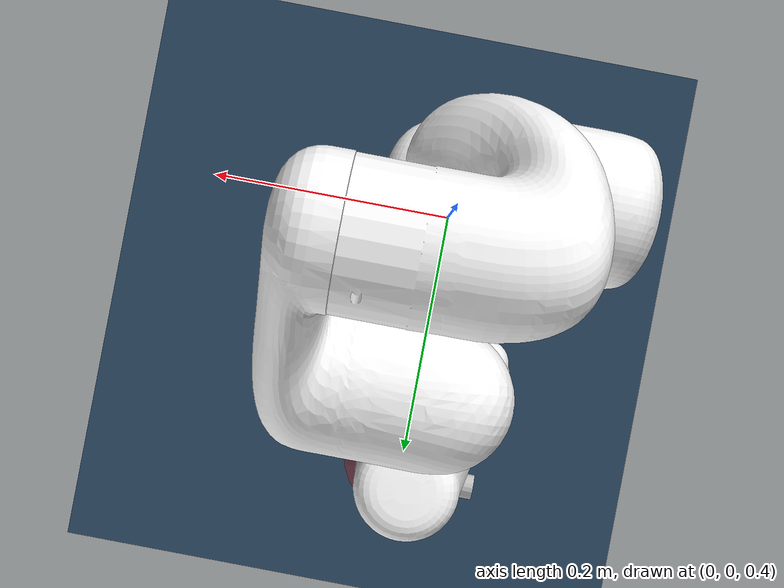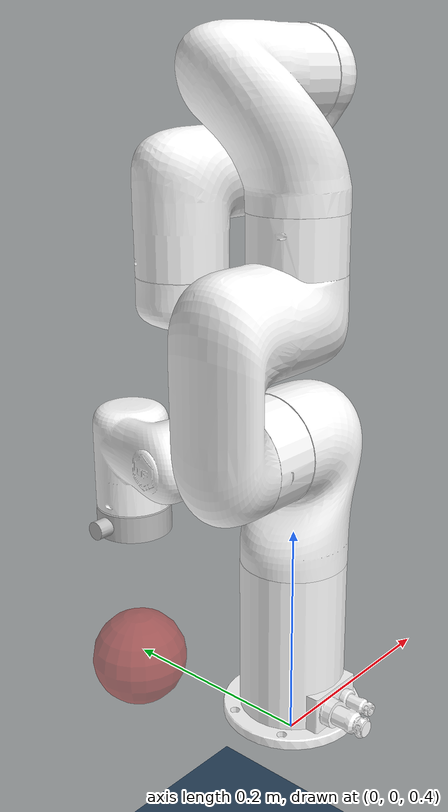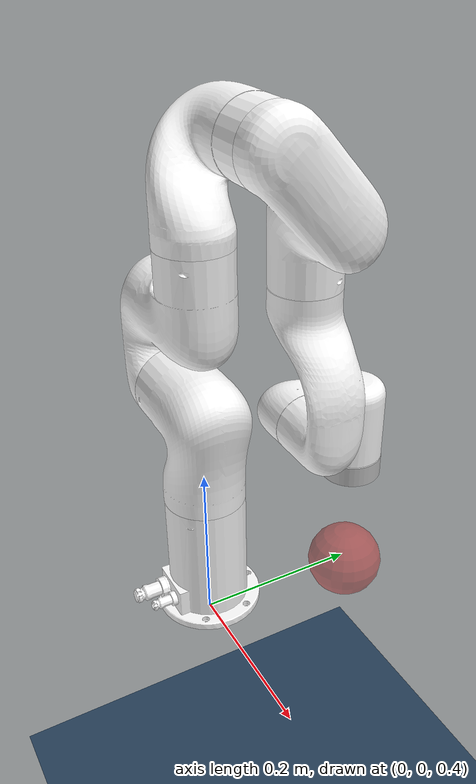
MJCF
<mujoco model="xarm7 scene">
  <!-- 加载不带夹爪的xArm7模型 -->
  <include file="xarm7_nohand.xml"/>

  <!-- 未知 -->
  <statistic center="0.2 0 0.4" extent=".65"/>

  <!-- 视觉效果定义 -->
  <visual>
    <headlight diffuse="0.6 0.6 0.6" ambient="0.3 0.3 0.3" specular="0 0 0"/>
    <rgba haze="0.15 0.25 0.35 1"/>
    <global azimuth="150" elevation="-20"/>
  </visual>

  <asset>
    <!-- 天空盒样式 -->
    <texture type="skybox" builtin="gradient" rgb1="0.3 0.5 0.7" rgb2="0 0 0" width="512" height="3072"/>

    <!-- 地板样式1 -->
    <texture type="2d" name="groundplane" builtin="checker" mark="edge" rgb1="0.2 0.3 0.4" rgb2="0.1 0.2 0.3" markrgb="0.8 0.8 0.8" width="300" height="300"/>
    <material name="groundplane" texture="groundplane" texuniform="true" texrepeat="5 5" reflectance="0.2"/>

    <!-- 地板样式2 -->
    <texture type="2d" name="grid" builtin="checker" rgb1=".1 .2 .3" rgb2=".2 .3 .4" width="300" height="300"/>
    <material name="grid" texture="grid" texrepeat="8 8" reflectance=".2"/>

    <!-- 多种颜色RGB定义 -->
    <material name="red" rgba="0.8 0.2 0.2 1"/>
    <material name="orange" rgba="0.8 0.5 0.2 1"/>
    <material name="yellow" rgba="0.8 0.8 0.2 1"/>
    <material name="green" rgba="0.2 0.8 0.2 1"/>
    <material name="blue" rgba="0.2 0.2 0.8 1"/>
    <material name="purple" rgba="0.6 0.2 0.8 1"/>
    <material name="black" rgba="0.149 0.149 0.149 1"/>
    <material name="plastic" rgba="0.9 0.9 0.9 1"/>
  </asset>

  <!-- 灯光及地板定义 -->
  <worldbody>
    <light pos="0 0 1.5" dir="0 0 -1" directional="true"/>
    <geom name="floor" size="0 0 0.05"  type="plane" material="groundplane"/>
  </worldbody>

  <!-- 相机定义 -->
  <worldbody>
    <body name="camera1" pos=" 0.5  0.0 1.2" euler="0.0 0.0 0.0">
      <camera name="cam1" fovy="60"/>
    </body>

    <body name="camera2" pos=" 0.0  0.5 1.2" euler="0.0 0.0 0.0">
      <camera name="cam2" fovy="60"/>
    </body>

    <body name="camera3" pos="-0.5  0.0 1.2" euler="0.0 0.0 0.0">
      <camera name="cam3" fovy="60"/>
    </body>

    <body name="camera4" pos=" 0.0 -0.5 1.2" euler="0.0 0.0 0.0">
      <camera name="cam4" fovy="60"/>
    </body>
  </worldbody>

</mujoco>

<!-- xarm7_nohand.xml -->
<mujoco model="xarm7 nohand">
  <compiler angle="radian" autolimits="true" meshdir="assets"/>

  <option integrator="implicitfast"/>

  <asset>
    <material name="white" rgba="1 1 1 1"/>
    <material name="gray" rgba="0.753 0.753 0.753 1"/>

    <mesh file="link_base.stl"/>
    <mesh file="link1.stl"/>
    <mesh file="link2.stl"/>
    <mesh file="link3.stl"/>
    <mesh file="link4.stl"/>
    <mesh file="link5.stl"/>
    <mesh file="link6.stl"/>
    <mesh file="link7.stl"/>
    <mesh file="end_tool.stl"/>
  </asset>

  <default>
    <default class="xarm7">
      <geom type="mesh" material="white"/>
      <joint axis="0 0 1" armature="0.1" range="-6.28319 6.28319" frictionloss="1"/>
      <general biastype="affine" ctrlrange="-6.28319 6.28319"/>
      <default class="size1">
        <joint damping="10"/>
        <general gainprm="1500" biasprm="0 -1500 -150" forcerange="-50 50"/>
      </default>
      <default class="size2">
        <joint damping="5"/>
        <general gainprm="1000" biasprm="0 -1000 -100" forcerange="-30 30"/>
      </default>
      <default class="size3">
        <joint damping="2"/>
        <general gainprm="800" biasprm="0 -800 -80" forcerange="-20 20"/>
      </default>
      <site size="0.001" rgba="1 0 0 1" group="4"/>
    </default>
  </default>

  <worldbody>
    <body name="link_base"  pos="0.0 0.0 0.42" quat="0.7071068 0 0 0.7071068" childclass="xarm7">
      <inertial pos="-0.021131 -0.0016302 0.056488" quat="0.696843 0.20176 0.10388 0.680376" mass="0.88556"
        diaginertia="0.00382023 0.00335282 0.00167725"/>
      <geom mesh="link_base"/>
      <body name="link1" pos="0 0 0.267">
        <inertial pos="-0.0002 0.02905 -0.01233" quat="0.978953 -0.202769 -0.00441617 -0.0227264" mass="2.382"
          diaginertia="0.00569127 0.00533384 0.00293865"/>
        <joint name="joint1" class="size1"/>
        <geom mesh="link1"/>
        <body name="link2" quat="1 -1 0 0">
          <inertial pos="0.00022 -0.12856 0.01735" quat="0.50198 0.86483 -0.00778841 0.00483285" mass="1.869"
            diaginertia="0.00959898 0.00937717 0.00201315"/>
          <joint name="joint2" range="-2.059 2.0944" class="size1"/>
          <geom mesh="link2"/>
          <body name="link3" pos="0 -0.293 0" quat="1 1 0 0">
            <inertial pos="0.0466 -0.02463 -0.00768" quat="0.913819 0.289775 0.281481 -0.0416455" mass="1.6383"
              diaginertia="0.00351721 0.00294089 0.00195868"/>
            <joint name="joint3" class="size2"/>
            <geom mesh="link3"/>
            <body name="link4" pos="0.0525 0 0" quat="1 1 0 0">
              <inertial pos="0.07047 -0.11575 0.012" quat="0.422108 0.852026 -0.126025 0.282832" mass="1.7269"
                diaginertia="0.00657137 0.00647948 0.00186763"/>
              <joint name="joint4" range="-0.19198 3.927" class="size2"/>
              <geom mesh="link4"/>
              <body name="link5" pos="0.0775 -0.3425 0" quat="1 1 0 0">
                <inertial pos="-0.00032 0.01604 -0.026" quat="0.999311 -0.0304457 0.000577067 0.0212082" mass="1.3203"
                  diaginertia="0.00534729 0.00499076 0.0013489"/>
                <joint name="joint5" class="size2"/>
                <geom mesh="link5"/>
                <body name="link6" quat="1 1 0 0">
                  <inertial pos="0.06469 0.03278 0.02141" quat="-0.217672 0.772419 0.16258 0.574069" mass="1.325"
                    diaginertia="0.00245421 0.00221646 0.00107273"/>
                  <joint name="joint6" range="-1.69297 3.14159" class="size3"/>
                  <geom mesh="link6"/>
                  <body name="link7" pos="0.076 0.097 0" quat="1 -1 0 0">
                    <inertial pos="0 -0.00677 -0.01098" quat="0.487612 0.512088 -0.512088 0.487612" mass="0.17"
                      diaginertia="0.000132176 9.3e-05 5.85236e-05"/>
                    <joint name="joint7" class="size3"/>
                    <geom material="gray" mesh="end_tool"/>
                    <site name="attachment_site"/>

                      <body name="end_effector" pos="0.000 0.000 0.150" euler="0 0 0">
                        <inertial pos="0 0 0" mass="0"/>
                        <geom name="end_effector_geom" type="sphere" density="0" size="0.05" contype="0" conaffinity="0" rgba="0.8 0.2 0.2 0.5" group="2"/>
                      </body>

                  </body>
                </body>
              </body>
            </body>
          </body>
        </body>
      </body>
    </body>
  </worldbody>

  <actuator>
    <general name="act1" joint="joint1" class="size1"/>
    <general name="act2" joint="joint2" class="size1" ctrlrange="-2.059 2.0944"/>
    <general name="act3" joint="joint3" class="size2"/>
    <general name="act4" joint="joint4" class="size2" ctrlrange="-0.19198 3.927"/>
    <general name="act5" joint="joint5" class="size2"/>
    <general name="act6" joint="joint6" class="size3" ctrlrange="-1.69297 3.14159"/>
    <general name="act7" joint="joint7" class="size3"/>
  </actuator>

  <sensor>
    <!-- 1. 关节位置传感器 -->

    <!-- 2. 关节速度传感器 -->

    <!-- 3. 执行器力传感器（测量驱动器输出的力） -->

    <!-- 4. 力传感器（测量作用在站点上的力） -->

    <!-- 5. 加速度计传感器 -->

    <!-- 6. 陀螺仪传感器 -->
  </sensor>

  <keyframe>
    <key name="home" qpos="0 -.247 0 .909 0 1.15644 0" ctrl="0 -.247 0 .909 0 1.15644 0"/>
  </keyframe>
</mujoco>
